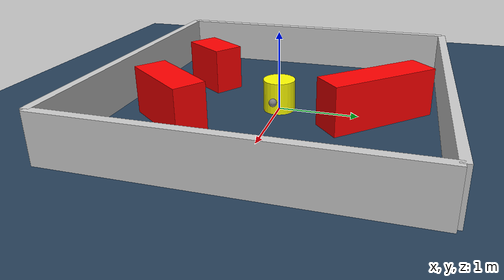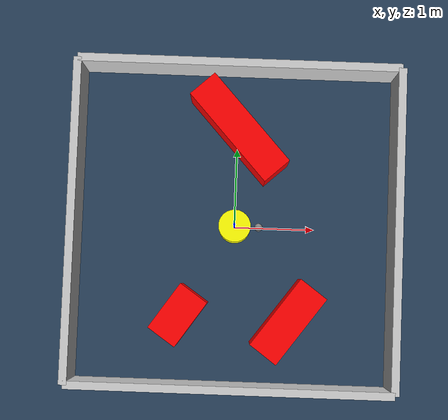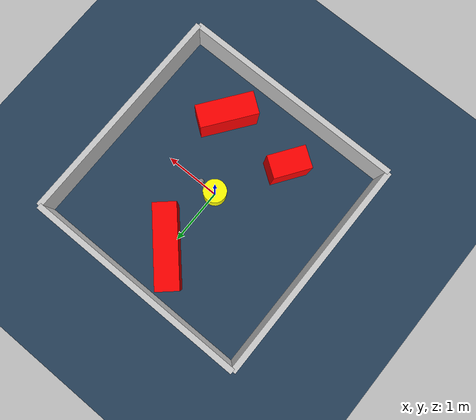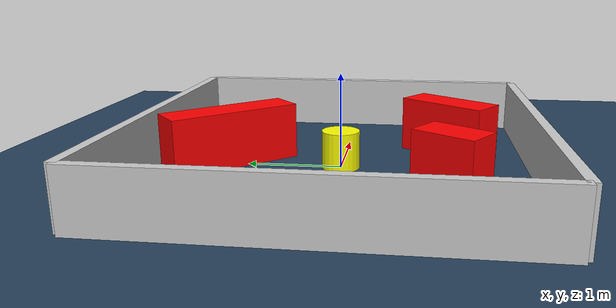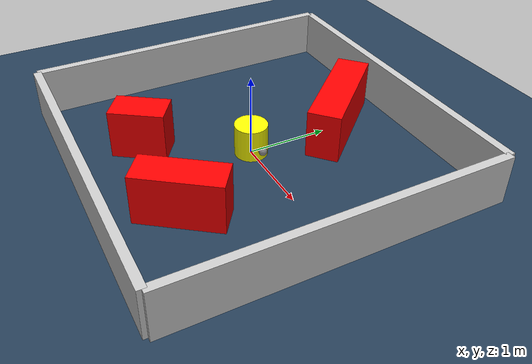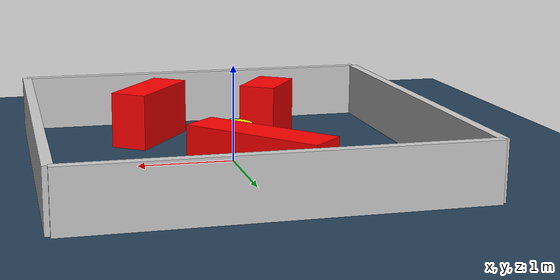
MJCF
<?xml version="1.0" ?>
<mujoco model="generated_environment">
  <option timestep="0.01" integrator="RK4" cone="elliptic"/>
  <default>
    <geom density="1"/>
  </default>
  <asset>
    <texture builtin="gradient" height="3072" rgb1="0.3 0.5 0.7" rgb2="0 0 0" type="skybox" width="512"/>
    <texture builtin="checker" height="300" mark="edge" markrgb="0.8 0.8 0.8" name="groundplane" rgb1="0.2 0.3 0.4" rgb2="0.1 0.2 0.3" type="2d" width="300"/>
    <material name="groundplane" reflectance="0.2" texrepeat="5 5" texture="groundplane" texuniform="true"/>
    <material name="robot" rgba="0.0 1.0 0.0 1"/>
  </asset>
  <worldbody>
    <light dir="0 0 -1" directional="true" pos="0 0 1.5"/>
    <geom condim="4" friction="1.0 0.005 0.001" material="groundplane" name="floor" size="0 0 0.05" type="plane"/>
    <body name="walls">
      <geom name="wall_1" condim="4" pos="-2.0 0.0 0.3" rgba="0.800000011920929 0.800000011920929 0.800000011920929 1.0" size="0.05 2.0 0.3" type="box"/>
      <geom name="wall_2" condim="4" pos="2.0 0.0 0.3" rgba="0.800000011920929 0.800000011920929 0.800000011920929 1.0" size="0.05 2.0 0.3" type="box"/>
      <geom name="wall_3" condim="4" pos="0.0 -2.0 0.3" rgba="0.800000011920929 0.800000011920929 0.800000011920929 1.0" size="2.0 0.05 0.3" type="box"/>
      <geom name="wall_4" condim="4" pos="0.0 2.0 0.3" rgba="0.800000011920929 0.800000011920929 0.800000011920929 1.0" size="2.0 0.05 0.3" type="box"/>
    </body>
    <body name="robot">
      <joint name="joint_x" type="slide" pos="0 0 0" axis="1 0 0"/>
      <joint name="joint_y" type="slide" pos="0 0 0" axis="0 1 0"/>
      <geom name="robot" type="sphere" pos="0.3 0.0 0.2" size="0.05" mass="5." friction="1.0 0.005 0.0001" condim="4" rgba="0.5 0.5 0.5 1.0"/>
      <site name="sensor_ball"/>
    </body>
    <body name="obstacle_movable_1">
      <geom name="obstacle_movable_1" condim="4" pos="0.0 0.0 0.2" euler="0 0 0.0" friction="1.0 0.005 0.001" rgba="1.0 1.0 0.0 1.0" size="0.2 0.2 0.0" type="cylinder" mass="0.1"/>
      <joint type="free"/>
    </body>
    <body name="obstacle_2_static">
      <geom name="obstacle_2_static" condim="4" pos="-0.6513095631907762 -1.1162881116615804 0.3" euler="0 0 55.35417285934792" friction="1.0 0.005 0.001" rgba="1 0 0 1" size="0.3308790973226794 0.2 0.3" type="box"/>
    </body>
    <body name="obstacle_3_static">
      <geom name="obstacle_3_static" condim="4" pos="0.02067291514961389 1.1993230471100842 0.3" euler="0 0 312.1342212652104" friction="1.0 0.005 0.001" rgba="1 0 0 1" size="0.7078349676339754 0.2 0.3" type="box"/>
    </body>
    <body name="obstacle_4_static">
      <geom name="obstacle_4_static" condim="4" pos="0.6915905037991754 -1.152430604507468 0.3" euler="0 0 233.72100036927887" friction="1.0 0.005 0.001" rgba="1 0 0 1" size="0.5028559042947135 0.2 0.3" type="box"/>
    </body>
  </worldbody>
  <actuator>
    <motor name="actuator_x" joint="joint_x" gear="1" ctrlrange="-1 1"/>
    <motor name="actuator_y" joint="joint_y" gear="1" ctrlrange="-1 1"/>
  </actuator>
</mujoco>
